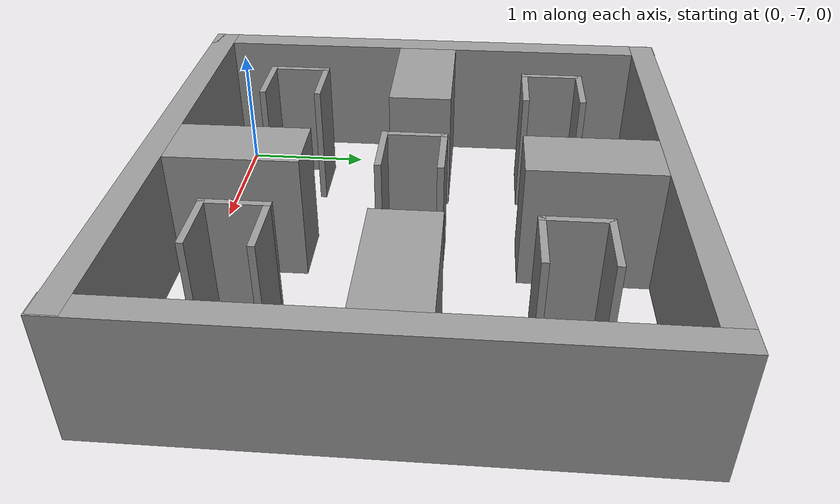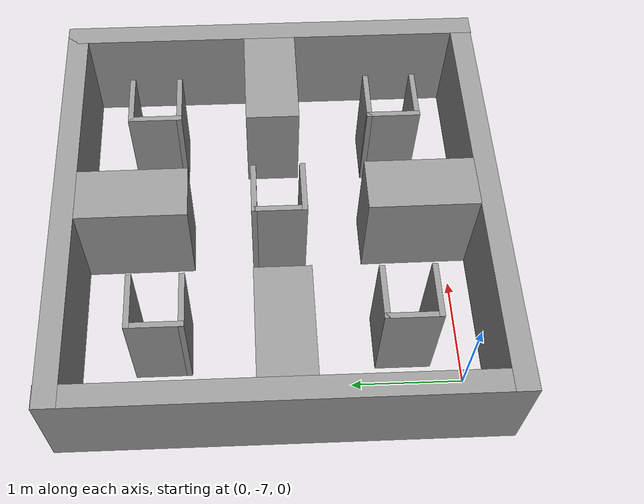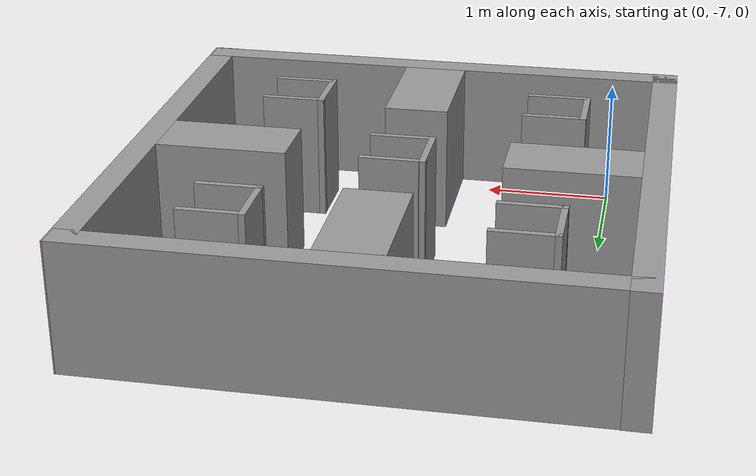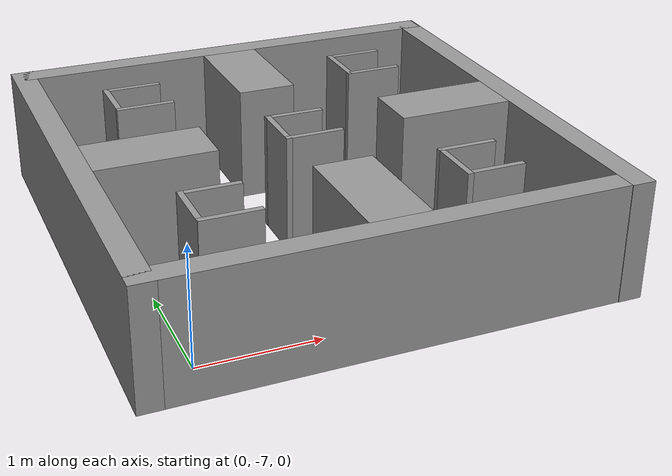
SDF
<sdf version="1.7">
 <model name="final_model">
  <link name="link_0">
   <inertial>
    <mass>1</mass>
    <inertia>
     <ixx>0.166667</ixx>
     <ixy>0</ixy>
     <ixz>0</ixz>
     <iyy>0.166667</iyy>
     <iyz>0</iyz>
     <izz>0.166667</izz>
    </inertia>
   </inertial>
   <pose>1.48205 -3.49214 0.5 0 -0 0</pose>
   <visual name="visual">
    <geometry><box><size>4 0.2 1</size></box></geometry>
    <material>
     <lighting>1</lighting>
     <script><uri>file://media/materials/scripts/gazebo.material</uri><name>Gazebo/Grey</name></script>
     <shader type="pixel"><normal_map>__default__</normal_map></shader>
     <ambient>0.1 0.1 0.1 1</ambient>
     <diffuse>0.1 0.1 0.1 1</diffuse>
     <specular>0.01 0.01 0.01 1</specular>
     <emissive>0 0 0 1</emissive>
    </material>
   </visual>
   <collision name="collision">
    <geometry><box><size>1 1 1</size></box></geometry>
    <surface>
     <friction>
      <ode><mu>1</mu><mu2>1</mu2><fdir1>0 0 0</fdir1><slip1>0</slip1><slip2>0</slip2></ode>
      <torsional>
       <coefficient>1</coefficient>
       <patch_radius>0</patch_radius>
       <surface_radius>0</surface_radius>
       <use_patch_radius>1</use_patch_radius>
       <ode><slip>0</slip></ode>
      </torsional>
     </friction>
     <bounce><restitution_coefficient>0</restitution_coefficient><threshold>1e+06</threshold></bounce>
     <contact>
      <collide_without_contact>0</collide_without_contact>
      <collide_without_contact_bitmask>1</collide_without_contact_bitmask>
      <collide_bitmask>1</collide_bitmask>
      <ode>
       <soft_cfm>0</soft_cfm>
       <soft_erp>0.2</soft_erp>
       <kp>1e+13</kp>
       <kd>1</kd>
       <max_vel>0.01</max_vel>
       <min_depth>0</min_depth>
      </ode>
      <bullet>
       <split_impulse>1</split_impulse>
       <split_impulse_penetration_threshold>-0.01</split_impulse_penetration_threshold>
       <soft_cfm>0</soft_cfm>
       <soft_erp>0.2</soft_erp>
       <kp>1e+13</kp>
       <kd>1</kd>
      </bullet>
     </contact>
    </surface>
   </collision>
  </link>
  <link name="link_0_clone">
   <inertial>
    <mass>1</mass>
    <inertia>
     <ixx>0.166667</ixx>
     <ixy>0</ixy>
     <ixz>0</ixz>
     <iyy>0.166667</iyy>
     <iyz>0</iyz>
     <izz>0.166667</izz>
    </inertia>
   </inertial>
   <pose>1.48176 -7.28709 0.5 0 -0 0</pose>
   <visual name="visual">
    <geometry><box><size>4 0.2 1</size></box></geometry>
    <material>
     <lighting>1</lighting>
     <script><uri>file://media/materials/scripts/gazebo.material</uri><name>Gazebo/Grey</name></script>
     <shader type="pixel"><normal_map>__default__</normal_map></shader>
     <ambient>0.1 0.1 0.1 1</ambient>
     <diffuse>0.1 0.1 0.1 1</diffuse>
     <specular>0.01 0.01 0.01 1</specular>
     <emissive>0 0 0 1</emissive>
    </material>
   </visual>
   <collision name="collision">
    <geometry><box><size>1 1 1</size></box></geometry>
    <surface>
     <friction>
      <ode><mu>1</mu><mu2>1</mu2><fdir1>0 0 0</fdir1><slip1>0</slip1><slip2>0</slip2></ode>
      <torsional>
       <coefficient>1</coefficient>
       <patch_radius>0</patch_radius>
       <surface_radius>0</surface_radius>
       <use_patch_radius>1</use_patch_radius>
       <ode><slip>0</slip></ode>
      </torsional>
     </friction>
     <bounce><restitution_coefficient>0</restitution_coefficient><threshold>1e+06</threshold></bounce>
     <contact>
      <collide_without_contact>0</collide_without_contact>
      <collide_without_contact_bitmask>1</collide_without_contact_bitmask>
      <collide_bitmask>1</collide_bitmask>
      <ode>
       <soft_cfm>0</soft_cfm>
       <soft_erp>0.2</soft_erp>
       <kp>1e+13</kp>
       <kd>1</kd>
       <max_vel>0.01</max_vel>
       <min_depth>0</min_depth>
      </ode>
      <bullet>
       <split_impulse>1</split_impulse>
       <split_impulse_penetration_threshold>-0.01</split_impulse_penetration_threshold>
       <soft_cfm>0</soft_cfm>
       <soft_erp>0.2</soft_erp>
       <kp>1e+13</kp>
       <kd>1</kd>
      </bullet>
     </contact>
    </surface>
   </collision>
  </link>
  <link name="link_0_clone_0">
   <inertial>
    <mass>1</mass>
    <inertia>
     <ixx>0.166667</ixx>
     <ixy>0</ixy>
     <ixz>0</ixz>
     <iyy>0.166667</iyy>
     <iyz>0</iyz>
     <izz>0.166667</izz>
    </inertia>
   </inertial>
   <pose>3.39281 -5.39262 0.5 0 0 -1.57086</pose>
   <visual name="visual">
    <geometry><box><size>4 0.2 1</size></box></geometry>
    <material>
     <lighting>1</lighting>
     <script><uri>file://media/materials/scripts/gazebo.material</uri><name>Gazebo/Grey</name></script>
     <shader type="pixel"><normal_map>__default__</normal_map></shader>
     <ambient>0.1 0.1 0.1 1</ambient>
     <diffuse>0.1 0.1 0.1 1</diffuse>
     <specular>0.01 0.01 0.01 1</specular>
     <emissive>0 0 0 1</emissive>
    </material>
   </visual>
   <collision name="collision">
    <geometry><box><size>1 1 1</size></box></geometry>
    <surface>
     <friction>
      <ode><mu>1</mu><mu2>1</mu2><fdir1>0 0 0</fdir1><slip1>0</slip1><slip2>0</slip2></ode>
      <torsional>
       <coefficient>1</coefficient>
       <patch_radius>0</patch_radius>
       <surface_radius>0</surface_radius>
       <use_patch_radius>1</use_patch_radius>
       <ode><slip>0</slip></ode>
      </torsional>
     </friction>
     <bounce><restitution_coefficient>0</restitution_coefficient><threshold>1e+06</threshold></bounce>
     <contact>
      <collide_without_contact>0</collide_without_contact>
      <collide_without_contact_bitmask>1</collide_without_contact_bitmask>
      <collide_bitmask>1</collide_bitmask>
      <ode>
       <soft_cfm>0</soft_cfm>
       <soft_erp>0.2</soft_erp>
       <kp>1e+13</kp>
       <kd>1</kd>
       <max_vel>0.01</max_vel>
       <min_depth>0</min_depth>
      </ode>
      <bullet>
       <split_impulse>1</split_impulse>
       <split_impulse_penetration_threshold>-0.01</split_impulse_penetration_threshold>
       <soft_cfm>0</soft_cfm>
       <soft_erp>0.2</soft_erp>
       <kp>1e+13</kp>
       <kd>1</kd>
      </bullet>
     </contact>
    </surface>
   </collision>
  </link>
  <link name="link_0_clone_0_clone">
   <inertial>
    <mass>1</mass>
    <inertia>
     <ixx>0.166667</ixx>
     <ixy>0</ixy>
     <ixz>0</ixz>
     <iyy>0.166667</iyy>
     <iyz>0</iyz>
     <izz>0.166667</izz>
    </inertia>
   </inertial>
   <pose>-0.418322 -5.38811 0.5 0 0 -1.57086</pose>
   <visual name="visual">
    <geometry><box><size>4 0.2 1</size></box></geometry>
    <material>
     <lighting>1</lighting>
     <script><uri>file://media/materials/scripts/gazebo.material</uri><name>Gazebo/Grey</name></script>
     <shader type="pixel"><normal_map>__default__</normal_map></shader>
     <ambient>0.1 0.1 0.1 1</ambient>
     <diffuse>0.1 0.1 0.1 1</diffuse>
     <specular>0.01 0.01 0.01 1</specular>
     <emissive>0 0 0 1</emissive>
    </material>
   </visual>
   <collision name="collision">
    <geometry><box><size>1 1 1</size></box></geometry>
    <surface>
     <friction>
      <ode><mu>1</mu><mu2>1</mu2><fdir1>0 0 0</fdir1><slip1>0</slip1><slip2>0</slip2></ode>
      <torsional>
       <coefficient>1</coefficient>
       <patch_radius>0</patch_radius>
       <surface_radius>0</surface_radius>
       <use_patch_radius>1</use_patch_radius>
       <ode><slip>0</slip></ode>
      </torsional>
     </friction>
     <bounce><restitution_coefficient>0</restitution_coefficient><threshold>1e+06</threshold></bounce>
     <contact>
      <collide_without_contact>0</collide_without_contact>
      <collide_without_contact_bitmask>1</collide_without_contact_bitmask>
      <collide_bitmask>1</collide_bitmask>
      <ode>
       <soft_cfm>0</soft_cfm>
       <soft_erp>0.2</soft_erp>
       <kp>1e+13</kp>
       <kd>1</kd>
       <max_vel>0.01</max_vel>
       <min_depth>0</min_depth>
      </ode>
      <bullet>
       <split_impulse>1</split_impulse>
       <split_impulse_penetration_threshold>-0.01</split_impulse_penetration_threshold>
       <soft_cfm>0</soft_cfm>
       <soft_erp>0.2</soft_erp>
       <kp>1e+13</kp>
       <kd>1</kd>
      </bullet>
     </contact>
    </surface>
   </collision>
  </link>
  <link name="link_1">
   <inertial>
    <mass>1</mass>
    <inertia>
     <ixx>0.166667</ixx>
     <ixy>0</ixy>
     <ixz>0</ixz>
     <iyy>0.166667</iyy>
     <iyz>0</iyz>
     <izz>0.166667</izz>
    </inertia>
   </inertial>
   <pose>1.72285 -5.20542 0.5 0 -0 0</pose>
   <visual name="visual">
    <geometry><box><size>0 0 0</size></box></geometry>
    <material>
     <lighting>1</lighting>
     <script><uri>file://media/materials/scripts/gazebo.material</uri><name>Gazebo/Grey</name></script>
     <shader type="pixel"><normal_map>__default__</normal_map></shader>
     <ambient>0.1 0.1 0.1 1</ambient>
     <diffuse>0.1 0.1 0.1 1</diffuse>
     <specular>0.01 0.01 0.01 1</specular>
     <emissive>0 0 0 1</emissive>
    </material>
   </visual>
   <collision name="collision">
    <geometry><box><size>1 1 1</size></box></geometry>
    <surface>
     <friction>
      <ode><mu>1</mu><mu2>1</mu2><fdir1>0 0 0</fdir1><slip1>0</slip1><slip2>0</slip2></ode>
      <torsional>
       <coefficient>1</coefficient>
       <patch_radius>0</patch_radius>
       <surface_radius>0</surface_radius>
       <use_patch_radius>1</use_patch_radius>
       <ode><slip>0</slip></ode>
      </torsional>
     </friction>
     <bounce><restitution_coefficient>0</restitution_coefficient><threshold>1e+06</threshold></bounce>
     <contact>
      <collide_without_contact>0</collide_without_contact>
      <collide_without_contact_bitmask>1</collide_without_contact_bitmask>
      <collide_bitmask>1</collide_bitmask>
      <ode>
       <soft_cfm>0</soft_cfm>
       <soft_erp>0.2</soft_erp>
       <kp>1e+13</kp>
       <kd>1</kd>
       <max_vel>0.01</max_vel>
       <min_depth>0</min_depth>
      </ode>
      <bullet>
       <split_impulse>1</split_impulse>
       <split_impulse_penetration_threshold>-0.01</split_impulse_penetration_threshold>
       <soft_cfm>0</soft_cfm>
       <soft_erp>0.2</soft_erp>
       <kp>1e+13</kp>
       <kd>1</kd>
      </bullet>
     </contact>
    </surface>
   </collision>
  </link>
  <link name="link_1_clone">
   <inertial>
    <mass>1</mass>
    <inertia>
     <ixx>0.166667</ixx>
     <ixy>0</ixy>
     <ixz>0</ixz>
     <iyy>0.166667</iyy>
     <iyz>0</iyz>
     <izz>0.166667</izz>
    </inertia>
   </inertial>
   <pose>2.79473 -5.37966 0.5 0 -0 0</pose>
   <visual name="visual">
    <geometry><box><size>1 0.5 1</size></box></geometry>
    <material>
     <lighting>1</lighting>
     <script><uri>file://media/materials/scripts/gazebo.material</uri><name>Gazebo/Grey</name></script>
     <shader type="pixel"><normal_map>__default__</normal_map></shader>
     <ambient>0.1 0.1 0.1 1</ambient>
     <diffuse>0.1 0.1 0.1 1</diffuse>
     <specular>0.01 0.01 0.01 1</specular>
     <emissive>0 0 0 1</emissive>
    </material>
   </visual>
   <collision name="collision">
    <geometry><box><size>1 1 1</size></box></geometry>
    <surface>
     <friction>
      <ode><mu>1</mu><mu2>1</mu2><fdir1>0 0 0</fdir1><slip1>0</slip1><slip2>0</slip2></ode>
      <torsional>
       <coefficient>1</coefficient>
       <patch_radius>0</patch_radius>
       <surface_radius>0</surface_radius>
       <use_patch_radius>1</use_patch_radius>
       <ode><slip>0</slip></ode>
      </torsional>
     </friction>
     <bounce><restitution_coefficient>0</restitution_coefficient><threshold>1e+06</threshold></bounce>
     <contact>
      <collide_without_contact>0</collide_without_contact>
      <collide_without_contact_bitmask>1</collide_without_contact_bitmask>
      <collide_bitmask>1</collide_bitmask>
      <ode>
       <soft_cfm>0</soft_cfm>
       <soft_erp>0.2</soft_erp>
       <kp>1e+13</kp>
       <kd>1</kd>
       <max_vel>0.01</max_vel>
       <min_depth>0</min_depth>
      </ode>
      <bullet>
       <split_impulse>1</split_impulse>
       <split_impulse_penetration_threshold>-0.01</split_impulse_penetration_threshold>
       <soft_cfm>0</soft_cfm>
       <soft_erp>0.2</soft_erp>
       <kp>1e+13</kp>
       <kd>1</kd>
      </bullet>
     </contact>
    </surface>
   </collision>
  </link>
  <link name="link_1_clone_0">
   <inertial>
    <mass>1</mass>
    <inertia>
     <ixx>0.166667</ixx>
     <ixy>0</ixy>
     <ixz>0</ixz>
     <iyy>0.166667</iyy>
     <iyz>0</iyz>
     <izz>0.166667</izz>
    </inertia>
   </inertial>
   <pose>1.27253 -5.40395 0.5 0 -0 0</pose>
   <visual name="visual">
    <geometry><box><size>0.05 0.5 1</size></box></geometry>
    <material>
     <lighting>1</lighting>
     <script><uri>file://media/materials/scripts/gazebo.material</uri><name>Gazebo/Grey</name></script>
     <shader type="pixel"><normal_map>__default__</normal_map></shader>
     <ambient>0.1 0.1 0.1 1</ambient>
     <diffuse>0.1 0.1 0.1 1</diffuse>
     <specular>0.01 0.01 0.01 1</specular>
     <emissive>0 0 0 1</emissive>
    </material>
   </visual>
   <collision name="collision">
    <geometry><box><size>1 1 1</size></box></geometry>
    <surface>
     <friction>
      <ode><mu>1</mu><mu2>1</mu2><fdir1>0 0 0</fdir1><slip1>0</slip1><slip2>0</slip2></ode>
      <torsional>
       <coefficient>1</coefficient>
       <patch_radius>0</patch_radius>
       <surface_radius>0</surface_radius>
       <use_patch_radius>1</use_patch_radius>
       <ode><slip>0</slip></ode>
      </torsional>
     </friction>
     <bounce><restitution_coefficient>0</restitution_coefficient><threshold>1e+06</threshold></bounce>
     <contact>
      <collide_without_contact>0</collide_without_contact>
      <collide_without_contact_bitmask>1</collide_without_contact_bitmask>
      <collide_bitmask>1</collide_bitmask>
      <ode>
       <soft_cfm>0</soft_cfm>
       <soft_erp>0.2</soft_erp>
       <kp>1e+13</kp>
       <kd>1</kd>
       <max_vel>0.01</max_vel>
       <min_depth>0</min_depth>
      </ode>
      <bullet>
       <split_impulse>1</split_impulse>
       <split_impulse_penetration_threshold>-0.01</split_impulse_penetration_threshold>
       <soft_cfm>0</soft_cfm>
       <soft_erp>0.2</soft_erp>
       <kp>1e+13</kp>
       <kd>1</kd>
      </bullet>
     </contact>
    </surface>
   </collision>
  </link>
  <link name="link_1_clone_0_clone">
   <inertial>
    <mass>1</mass>
    <inertia>
     <ixx>0.166667</ixx>
     <ixy>0</ixy>
     <ixz>0</ixz>
     <iyy>0.166667</iyy>
     <iyz>0</iyz>
     <izz>0.166667</izz>
    </inertia>
   </inertial>
   <pose>2.31781 -4.27736 0.5 0 -0 0</pose>
   <visual name="visual">
    <geometry><box><size>0.05 0.5 1</size></box></geometry>
    <material>
     <lighting>1</lighting>
     <script><uri>file://media/materials/scripts/gazebo.material</uri><name>Gazebo/Grey</name></script>
     <shader type="pixel"><normal_map>__default__</normal_map></shader>
     <ambient>0.1 0.1 0.1 1</ambient>
     <diffuse>0.1 0.1 0.1 1</diffuse>
     <specular>0.01 0.01 0.01 1</specular>
     <emissive>0 0 0 1</emissive>
    </material>
   </visual>
   <collision name="collision">
    <geometry><box><size>1 1 1</size></box></geometry>
    <surface>
     <friction>
      <ode><mu>1</mu><mu2>1</mu2><fdir1>0 0 0</fdir1><slip1>0</slip1><slip2>0</slip2></ode>
      <torsional>
       <coefficient>1</coefficient>
       <patch_radius>0</patch_radius>
       <surface_radius>0</surface_radius>
       <use_patch_radius>1</use_patch_radius>
       <ode><slip>0</slip></ode>
      </torsional>
     </friction>
     <bounce><restitution_coefficient>0</restitution_coefficient><threshold>1e+06</threshold></bounce>
     <contact>
      <collide_without_contact>0</collide_without_contact>
      <collide_without_contact_bitmask>1</collide_without_contact_bitmask>
      <collide_bitmask>1</collide_bitmask>
      <ode>
       <soft_cfm>0</soft_cfm>
       <soft_erp>0.2</soft_erp>
       <kp>1e+13</kp>
       <kd>1</kd>
       <max_vel>0.01</max_vel>
       <min_depth>0</min_depth>
      </ode>
      <bullet>
       <split_impulse>1</split_impulse>
       <split_impulse_penetration_threshold>-0.01</split_impulse_penetration_threshold>
       <soft_cfm>0</soft_cfm>
       <soft_erp>0.2</soft_erp>
       <kp>1e+13</kp>
       <kd>1</kd>
      </bullet>
     </contact>
    </surface>
   </collision>
  </link>
  <link name="link_1_clone_0_clone_clone">
   <inertial>
    <mass>1</mass>
    <inertia>
     <ixx>0.166667</ixx>
     <ixy>0</ixy>
     <ixz>0</ixz>
     <iyy>0.166667</iyy>
     <iyz>0</iyz>
     <izz>0.166667</izz>
    </inertia>
   </inertial>
   <pose>2.29216 -6.51452 0.5 0 -0 0</pose>
   <visual name="visual">
    <geometry><box><size>0.05 0.5 1</size></box></geometry>
    <material>
     <lighting>1</lighting>
     <script><uri>file://media/materials/scripts/gazebo.material</uri><name>Gazebo/Grey</name></script>
     <shader type="pixel"><normal_map>__default__</normal_map></shader>
     <ambient>0.1 0.1 0.1 1</ambient>
     <diffuse>0.1 0.1 0.1 1</diffuse>
     <specular>0.01 0.01 0.01 1</specular>
     <emissive>0 0 0 1</emissive>
    </material>
   </visual>
   <collision name="collision">
    <geometry><box><size>1 1 1</size></box></geometry>
    <surface>
     <friction>
      <ode><mu>1</mu><mu2>1</mu2><fdir1>0 0 0</fdir1><slip1>0</slip1><slip2>0</slip2></ode>
      <torsional>
       <coefficient>1</coefficient>
       <patch_radius>0</patch_radius>
       <surface_radius>0</surface_radius>
       <use_patch_radius>1</use_patch_radius>
       <ode><slip>0</slip></ode>
      </torsional>
     </friction>
     <bounce><restitution_coefficient>0</restitution_coefficient><threshold>1e+06</threshold></bounce>
     <contact>
      <collide_without_contact>0</collide_without_contact>
      <collide_without_contact_bitmask>1</collide_without_contact_bitmask>
      <collide_bitmask>1</collide_bitmask>
      <ode>
       <soft_cfm>0</soft_cfm>
       <soft_erp>0.2</soft_erp>
       <kp>1e+13</kp>
       <kd>1</kd>
       <max_vel>0.01</max_vel>
       <min_depth>0</min_depth>
      </ode>
      <bullet>
       <split_impulse>1</split_impulse>
       <split_impulse_penetration_threshold>-0.01</split_impulse_penetration_threshold>
       <soft_cfm>0</soft_cfm>
       <soft_erp>0.2</soft_erp>
       <kp>1e+13</kp>
       <kd>1</kd>
      </bullet>
     </contact>
    </surface>
   </collision>
  </link>
  <link name="link_1_clone_0_clone_clone_0">
   <inertial>
    <mass>1</mass>
    <inertia>
     <ixx>0.166667</ixx>
     <ixy>0</ixy>
     <ixz>0</ixz>
     <iyy>0.166667</iyy>
     <iyz>0</iyz>
     <izz>0.166667</izz>
    </inertia>
   </inertial>
   <pose>0.176139 -4.32563 0.5 0 -0 0</pose>
   <visual name="visual">
    <geometry><box><size>0.05 0.5 1</size></box></geometry>
    <material>
     <lighting>1</lighting>
     <script><uri>file://media/materials/scripts/gazebo.material</uri><name>Gazebo/Grey</name></script>
     <shader type="pixel"><normal_map>__default__</normal_map></shader>
     <ambient>0.1 0.1 0.1 1</ambient>
     <diffuse>0.1 0.1 0.1 1</diffuse>
     <specular>0.01 0.01 0.01 1</specular>
     <emissive>0 0 0 1</emissive>
    </material>
   </visual>
   <collision name="collision">
    <geometry><box><size>1 1 1</size></box></geometry>
    <surface>
     <friction>
      <ode><mu>1</mu><mu2>1</mu2><fdir1>0 0 0</fdir1><slip1>0</slip1><slip2>0</slip2></ode>
      <torsional>
       <coefficient>1</coefficient>
       <patch_radius>0</patch_radius>
       <surface_radius>0</surface_radius>
       <use_patch_radius>1</use_patch_radius>
       <ode><slip>0</slip></ode>
      </torsional>
     </friction>
     <bounce><restitution_coefficient>0</restitution_coefficient><threshold>1e+06</threshold></bounce>
     <contact>
      <collide_without_contact>0</collide_without_contact>
      <collide_without_contact_bitmask>1</collide_without_contact_bitmask>
      <collide_bitmask>1</collide_bitmask>
      <ode>
       <soft_cfm>0</soft_cfm>
       <soft_erp>0.2</soft_erp>
       <kp>1e+13</kp>
       <kd>1</kd>
       <max_vel>0.01</max_vel>
       <min_depth>0</min_depth>
      </ode>
      <bullet>
       <split_impulse>1</split_impulse>
       <split_impulse_penetration_threshold>-0.01</split_impulse_penetration_threshold>
       <soft_cfm>0</soft_cfm>
       <soft_erp>0.2</soft_erp>
       <kp>1e+13</kp>
       <kd>1</kd>
      </bullet>
     </contact>
    </surface>
   </collision>
  </link>
  <link name="link_1_clone_0_clone_clone_1">
   <inertial>
    <mass>1</mass>
    <inertia>
     <ixx>0.166667</ixx>
     <ixy>0</ixy>
     <ixz>0</ixz>
     <iyy>0.166667</iyy>
     <iyz>0</iyz>
     <izz>0.166667</izz>
    </inertia>
   </inertial>
   <pose>0.182858 -6.47327 0.5 0 -0 0</pose>
   <visual name="visual">
    <geometry><box><size>0.05 0.5 1</size></box></geometry>
    <material>
     <lighting>1</lighting>
     <script><uri>file://media/materials/scripts/gazebo.material</uri><name>Gazebo/Grey</name></script>
     <shader type="pixel"><normal_map>__default__</normal_map></shader>
     <ambient>0.1 0.1 0.1 1</ambient>
     <diffuse>0.1 0.1 0.1 1</diffuse>
     <specular>0.01 0.01 0.01 1</specular>
     <emissive>0 0 0 1</emissive>
    </material>
   </visual>
   <collision name="collision">
    <geometry><box><size>1 1 1</size></box></geometry>
    <surface>
     <friction>
      <ode><mu>1</mu><mu2>1</mu2><fdir1>0 0 0</fdir1><slip1>0</slip1><slip2>0</slip2></ode>
      <torsional>
       <coefficient>1</coefficient>
       <patch_radius>0</patch_radius>
       <surface_radius>0</surface_radius>
       <use_patch_radius>1</use_patch_radius>
       <ode><slip>0</slip></ode>
      </torsional>
     </friction>
     <bounce><restitution_coefficient>0</restitution_coefficient><threshold>1e+06</threshold></bounce>
     <contact>
      <collide_without_contact>0</collide_without_contact>
      <collide_without_contact_bitmask>1</collide_without_contact_bitmask>
      <collide_bitmask>1</collide_bitmask>
      <ode>
       <soft_cfm>0</soft_cfm>
       <soft_erp>0.2</soft_erp>
       <kp>1e+13</kp>
       <kd>1</kd>
       <max_vel>0.01</max_vel>
       <min_depth>0</min_depth>
      </ode>
      <bullet>
       <split_impulse>1</split_impulse>
       <split_impulse_penetration_threshold>-0.01</split_impulse_penetration_threshold>
       <soft_cfm>0</soft_cfm>
       <soft_erp>0.2</soft_erp>
       <kp>1e+13</kp>
       <kd>1</kd>
      </bullet>
     </contact>
    </surface>
   </collision>
  </link>
  <link name="link_1_clone_1">
   <inertial>
    <mass>1</mass>
    <inertia>
     <ixx>0.166667</ixx>
     <ixy>0</ixy>
     <ixz>0</ixz>
     <iyy>0.166667</iyy>
     <iyz>0</iyz>
     <izz>0.166667</izz>
    </inertia>
   </inertial>
   <pose>1.49703 -5.18002 0.5 0 0 -1.57605</pose>
   <visual name="visual">
    <geometry><box><size>0.05 0.5 1</size></box></geometry>
    <material>
     <lighting>1</lighting>
     <script><uri>file://media/materials/scripts/gazebo.material</uri><name>Gazebo/Grey</name></script>
     <shader type="pixel"><normal_map>__default__</normal_map></shader>
     <ambient>0.1 0.1 0.1 1</ambient>
     <diffuse>0.1 0.1 0.1 1</diffuse>
     <specular>0.01 0.01 0.01 1</specular>
     <emissive>0 0 0 1</emissive>
    </material>
   </visual>
   <collision name="collision">
    <geometry><box><size>1 1 1</size></box></geometry>
    <surface>
     <friction>
      <ode><mu>1</mu><mu2>1</mu2><fdir1>0 0 0</fdir1><slip1>0</slip1><slip2>0</slip2></ode>
      <torsional>
       <coefficient>1</coefficient>
       <patch_radius>0</patch_radius>
       <surface_radius>0</surface_radius>
       <use_patch_radius>1</use_patch_radius>
       <ode><slip>0</slip></ode>
      </torsional>
     </friction>
     <bounce><restitution_coefficient>0</restitution_coefficient><threshold>1e+06</threshold></bounce>
     <contact>
      <collide_without_contact>0</collide_without_contact>
      <collide_without_contact_bitmask>1</collide_without_contact_bitmask>
      <collide_bitmask>1</collide_bitmask>
      <ode>
       <soft_cfm>0</soft_cfm>
       <soft_erp>0.2</soft_erp>
       <kp>1e+13</kp>
       <kd>1</kd>
       <max_vel>0.01</max_vel>
       <min_depth>0</min_depth>
      </ode>
      <bullet>
       <split_impulse>1</split_impulse>
       <split_impulse_penetration_threshold>-0.01</split_impulse_penetration_threshold>
       <soft_cfm>0</soft_cfm>
       <soft_erp>0.2</soft_erp>
       <kp>1e+13</kp>
       <kd>1</kd>
      </bullet>
     </contact>
    </surface>
   </collision>
  </link>
  <link name="link_1_clone_1_clone">
   <inertial>
    <mass>1</mass>
    <inertia>
     <ixx>0.166667</ixx>
     <ixy>0</ixy>
     <ixz>0</ixz>
     <iyy>0.166667</iyy>
     <iyz>0</iyz>
     <izz>0.166667</izz>
    </inertia>
   </inertial>
   <pose>1.49762 -5.62806 0.5 0 0 -1.57061</pose>
   <visual name="visual">
    <geometry><box><size>0.05 0.5 1</size></box></geometry>
    <material>
     <lighting>1</lighting>
     <script><uri>file://media/materials/scripts/gazebo.material</uri><name>Gazebo/Grey</name></script>
     <shader type="pixel"><normal_map>__default__</normal_map></shader>
     <ambient>0.1 0.1 0.1 1</ambient>
     <diffuse>0.1 0.1 0.1 1</diffuse>
     <specular>0.01 0.01 0.01 1</specular>
     <emissive>0 0 0 1</emissive>
    </material>
   </visual>
   <collision name="collision">
    <geometry><box><size>1 1 1</size></box></geometry>
    <surface>
     <friction>
      <ode><mu>1</mu><mu2>1</mu2><fdir1>0 0 0</fdir1><slip1>0</slip1><slip2>0</slip2></ode>
      <torsional>
       <coefficient>1</coefficient>
       <patch_radius>0</patch_radius>
       <surface_radius>0</surface_radius>
       <use_patch_radius>1</use_patch_radius>
       <ode><slip>0</slip></ode>
      </torsional>
     </friction>
     <bounce><restitution_coefficient>0</restitution_coefficient><threshold>1e+06</threshold></bounce>
     <contact>
      <collide_without_contact>0</collide_without_contact>
      <collide_without_contact_bitmask>1</collide_without_contact_bitmask>
      <collide_bitmask>1</collide_bitmask>
      <ode>
       <soft_cfm>0</soft_cfm>
       <soft_erp>0.2</soft_erp>
       <kp>1e+13</kp>
       <kd>1</kd>
       <max_vel>0.01</max_vel>
       <min_depth>0</min_depth>
      </ode>
      <bullet>
       <split_impulse>1</split_impulse>
       <split_impulse_penetration_threshold>-0.01</split_impulse_penetration_threshold>
       <soft_cfm>0</soft_cfm>
       <soft_erp>0.2</soft_erp>
       <kp>1e+13</kp>
       <kd>1</kd>
      </bullet>
     </contact>
    </surface>
   </collision>
  </link>
  <link name="link_1_clone_1_clone_0">
   <inertial>
    <mass>1</mass>
    <inertia>
     <ixx>0.166667</ixx>
     <ixy>0</ixy>
     <ixz>0</ixz>
     <iyy>0.166667</iyy>
     <iyz>0</iyz>
     <izz>0.166667</izz>
    </inertia>
   </inertial>
   <pose>2.54527 -4.05386 0.5 0 0 -1.57605</pose>
   <visual name="visual">
    <geometry><box><size>0.05 0.5 1</size></box></geometry>
    <material>
     <lighting>1</lighting>
     <script><uri>file://media/materials/scripts/gazebo.material</uri><name>Gazebo/Grey</name></script>
     <shader type="pixel"><normal_map>__default__</normal_map></shader>
     <ambient>0.1 0.1 0.1 1</ambient>
     <diffuse>0.1 0.1 0.1 1</diffuse>
     <specular>0.01 0.01 0.01 1</specular>
     <emissive>0 0 0 1</emissive>
    </material>
   </visual>
   <collision name="collision">
    <geometry><box><size>1 1 1</size></box></geometry>
    <surface>
     <friction>
      <ode><mu>1</mu><mu2>1</mu2><fdir1>0 0 0</fdir1><slip1>0</slip1><slip2>0</slip2></ode>
      <torsional>
       <coefficient>1</coefficient>
       <patch_radius>0</patch_radius>
       <surface_radius>0</surface_radius>
       <use_patch_radius>1</use_patch_radius>
       <ode><slip>0</slip></ode>
      </torsional>
     </friction>
     <bounce><restitution_coefficient>0</restitution_coefficient><threshold>1e+06</threshold></bounce>
     <contact>
      <collide_without_contact>0</collide_without_contact>
      <collide_without_contact_bitmask>1</collide_without_contact_bitmask>
      <collide_bitmask>1</collide_bitmask>
      <ode>
       <soft_cfm>0</soft_cfm>
       <soft_erp>0.2</soft_erp>
       <kp>1e+13</kp>
       <kd>1</kd>
       <max_vel>0.01</max_vel>
       <min_depth>0</min_depth>
      </ode>
      <bullet>
       <split_impulse>1</split_impulse>
       <split_impulse_penetration_threshold>-0.01</split_impulse_penetration_threshold>
       <soft_cfm>0</soft_cfm>
       <soft_erp>0.2</soft_erp>
       <kp>1e+13</kp>
       <kd>1</kd>
      </bullet>
     </contact>
    </surface>
   </collision>
  </link>
  <link name="link_1_clone_1_clone_clone">
   <inertial>
    <mass>1</mass>
    <inertia>
     <ixx>0.166667</ixx>
     <ixy>0</ixy>
     <ixz>0</ixz>
     <iyy>0.166667</iyy>
     <iyz>0</iyz>
     <izz>0.166667</izz>
    </inertia>
   </inertial>
   <pose>2.54274 -4.50255 0.5 0 0 -1.57061</pose>
   <visual name="visual">
    <geometry><box><size>0.05 0.5 1</size></box></geometry>
    <material>
     <lighting>1</lighting>
     <script><uri>file://media/materials/scripts/gazebo.material</uri><name>Gazebo/Grey</name></script>
     <shader type="pixel"><normal_map>__default__</normal_map></shader>
     <ambient>0.1 0.1 0.1 1</ambient>
     <diffuse>0.1 0.1 0.1 1</diffuse>
     <specular>0.01 0.01 0.01 1</specular>
     <emissive>0 0 0 1</emissive>
    </material>
   </visual>
   <collision name="collision">
    <geometry><box><size>1 1 1</size></box></geometry>
    <surface>
     <friction>
      <ode><mu>1</mu><mu2>1</mu2><fdir1>0 0 0</fdir1><slip1>0</slip1><slip2>0</slip2></ode>
      <torsional>
       <coefficient>1</coefficient>
       <patch_radius>0</patch_radius>
       <surface_radius>0</surface_radius>
       <use_patch_radius>1</use_patch_radius>
       <ode><slip>0</slip></ode>
      </torsional>
     </friction>
     <bounce><restitution_coefficient>0</restitution_coefficient><threshold>1e+06</threshold></bounce>
     <contact>
      <collide_without_contact>0</collide_without_contact>
      <collide_without_contact_bitmask>1</collide_without_contact_bitmask>
      <collide_bitmask>1</collide_bitmask>
      <ode>
       <soft_cfm>0</soft_cfm>
       <soft_erp>0.2</soft_erp>
       <kp>1e+13</kp>
       <kd>1</kd>
       <max_vel>0.01</max_vel>
       <min_depth>0</min_depth>
      </ode>
      <bullet>
       <split_impulse>1</split_impulse>
       <split_impulse_penetration_threshold>-0.01</split_impulse_penetration_threshold>
       <soft_cfm>0</soft_cfm>
       <soft_erp>0.2</soft_erp>
       <kp>1e+13</kp>
       <kd>1</kd>
      </bullet>
     </contact>
    </surface>
   </collision>
  </link>
  <link name="link_1_clone_1_clone_clone_clone">
   <inertial>
    <mass>1</mass>
    <inertia>
     <ixx>0.166667</ixx>
     <ixy>0</ixy>
     <ixz>0</ixz>
     <iyy>0.166667</iyy>
     <iyz>0</iyz>
     <izz>0.166667</izz>
    </inertia>
   </inertial>
   <pose>2.51701 -6.2895 0.5 0 0 -1.57061</pose>
   <visual name="visual">
    <geometry><box><size>0.05 0.5 1</size></box></geometry>
    <material>
     <lighting>1</lighting>
     <script><uri>file://media/materials/scripts/gazebo.material</uri><name>Gazebo/Grey</name></script>
     <shader type="pixel"><normal_map>__default__</normal_map></shader>
     <ambient>0.1 0.1 0.1 1</ambient>
     <diffuse>0.1 0.1 0.1 1</diffuse>
     <specular>0.01 0.01 0.01 1</specular>
     <emissive>0 0 0 1</emissive>
    </material>
   </visual>
   <collision name="collision">
    <geometry><box><size>1 1 1</size></box></geometry>
    <surface>
     <friction>
      <ode><mu>1</mu><mu2>1</mu2><fdir1>0 0 0</fdir1><slip1>0</slip1><slip2>0</slip2></ode>
      <torsional>
       <coefficient>1</coefficient>
       <patch_radius>0</patch_radius>
       <surface_radius>0</surface_radius>
       <use_patch_radius>1</use_patch_radius>
       <ode><slip>0</slip></ode>
      </torsional>
     </friction>
     <bounce><restitution_coefficient>0</restitution_coefficient><threshold>1e+06</threshold></bounce>
     <contact>
      <collide_without_contact>0</collide_without_contact>
      <collide_without_contact_bitmask>1</collide_without_contact_bitmask>
      <collide_bitmask>1</collide_bitmask>
      <ode>
       <soft_cfm>0</soft_cfm>
       <soft_erp>0.2</soft_erp>
       <kp>1e+13</kp>
       <kd>1</kd>
       <max_vel>0.01</max_vel>
       <min_depth>0</min_depth>
      </ode>
      <bullet>
       <split_impulse>1</split_impulse>
       <split_impulse_penetration_threshold>-0.01</split_impulse_penetration_threshold>
       <soft_cfm>0</soft_cfm>
       <soft_erp>0.2</soft_erp>
       <kp>1e+13</kp>
       <kd>1</kd>
      </bullet>
     </contact>
    </surface>
   </collision>
  </link>
  <link name="link_1_clone_1_clone_clone_clone_0">
   <inertial>
    <mass>1</mass>
    <inertia>
     <ixx>0.166667</ixx>
     <ixy>0</ixy>
     <ixz>0</ixz>
     <iyy>0.166667</iyy>
     <iyz>0</iyz>
     <izz>0.166667</izz>
    </inertia>
   </inertial>
   <pose>2.51803 -6.73646 0.5 0 0 -1.57061</pose>
   <visual name="visual">
    <geometry><box><size>0.05 0.5 1</size></box></geometry>
    <material>
     <lighting>1</lighting>
     <script><uri>file://media/materials/scripts/gazebo.material</uri><name>Gazebo/Grey</name></script>
     <shader type="pixel"><normal_map>__default__</normal_map></shader>
     <ambient>0.1 0.1 0.1 1</ambient>
     <diffuse>0.1 0.1 0.1 1</diffuse>
     <specular>0.01 0.01 0.01 1</specular>
     <emissive>0 0 0 1</emissive>
    </material>
   </visual>
   <collision name="collision">
    <geometry><box><size>1 1 1</size></box></geometry>
    <surface>
     <friction>
      <ode><mu>1</mu><mu2>1</mu2><fdir1>0 0 0</fdir1><slip1>0</slip1><slip2>0</slip2></ode>
      <torsional>
       <coefficient>1</coefficient>
       <patch_radius>0</patch_radius>
       <surface_radius>0</surface_radius>
       <use_patch_radius>1</use_patch_radius>
       <ode><slip>0</slip></ode>
      </torsional>
     </friction>
     <bounce><restitution_coefficient>0</restitution_coefficient><threshold>1e+06</threshold></bounce>
     <contact>
      <collide_without_contact>0</collide_without_contact>
      <collide_without_contact_bitmask>1</collide_without_contact_bitmask>
      <collide_bitmask>1</collide_bitmask>
      <ode>
       <soft_cfm>0</soft_cfm>
       <soft_erp>0.2</soft_erp>
       <kp>1e+13</kp>
       <kd>1</kd>
       <max_vel>0.01</max_vel>
       <min_depth>0</min_depth>
      </ode>
      <bullet>
       <split_impulse>1</split_impulse>
       <split_impulse_penetration_threshold>-0.01</split_impulse_penetration_threshold>
       <soft_cfm>0</soft_cfm>
       <soft_erp>0.2</soft_erp>
       <kp>1e+13</kp>
       <kd>1</kd>
      </bullet>
     </contact>
    </surface>
   </collision>
  </link>
  <link name="link_1_clone_1_clone_clone_clone_1">
   <inertial>
    <mass>1</mass>
    <inertia>
     <ixx>0.166667</ixx>
     <ixy>0</ixy>
     <ixz>0</ixz>
     <iyy>0.166667</iyy>
     <iyz>0</iyz>
     <izz>0.166667</izz>
    </inertia>
   </inertial>
   <pose>0.402724 -4.1013 0.5 0 0 -1.57061</pose>
   <visual name="visual">
    <geometry><box><size>0.05 0.5 1</size></box></geometry>
    <material>
     <lighting>1</lighting>
     <script><uri>file://media/materials/scripts/gazebo.material</uri><name>Gazebo/Grey</name></script>
     <shader type="pixel"><normal_map>__default__</normal_map></shader>
     <ambient>0.1 0.1 0.1 1</ambient>
     <diffuse>0.1 0.1 0.1 1</diffuse>
     <specular>0.01 0.01 0.01 1</specular>
     <emissive>0 0 0 1</emissive>
    </material>
   </visual>
   <collision name="collision">
    <geometry><box><size>1 1 1</size></box></geometry>
    <surface>
     <friction>
      <ode><mu>1</mu><mu2>1</mu2><fdir1>0 0 0</fdir1><slip1>0</slip1><slip2>0</slip2></ode>
      <torsional>
       <coefficient>1</coefficient>
       <patch_radius>0</patch_radius>
       <surface_radius>0</surface_radius>
       <use_patch_radius>1</use_patch_radius>
       <ode><slip>0</slip></ode>
      </torsional>
     </friction>
     <bounce><restitution_coefficient>0</restitution_coefficient><threshold>1e+06</threshold></bounce>
     <contact>
      <collide_without_contact>0</collide_without_contact>
      <collide_without_contact_bitmask>1</collide_without_contact_bitmask>
      <collide_bitmask>1</collide_bitmask>
      <ode>
       <soft_cfm>0</soft_cfm>
       <soft_erp>0.2</soft_erp>
       <kp>1e+13</kp>
       <kd>1</kd>
       <max_vel>0.01</max_vel>
       <min_depth>0</min_depth>
      </ode>
      <bullet>
       <split_impulse>1</split_impulse>
       <split_impulse_penetration_threshold>-0.01</split_impulse_penetration_threshold>
       <soft_cfm>0</soft_cfm>
       <soft_erp>0.2</soft_erp>
       <kp>1e+13</kp>
       <kd>1</kd>
      </bullet>
     </contact>
    </surface>
   </collision>
  </link>
  <link name="link_1_clone_1_clone_clone_clone_2">
   <inertial>
    <mass>1</mass>
    <inertia>
     <ixx>0.166667</ixx>
     <ixy>0</ixy>
     <ixz>0</ixz>
     <iyy>0.166667</iyy>
     <iyz>0</iyz>
     <izz>0.166667</izz>
    </inertia>
   </inertial>
   <pose>0.399589 -4.55251 0.5 0 0 -1.57061</pose>
   <visual name="visual">
    <geometry><box><size>0.05 0.5 1</size></box></geometry>
    <material>
     <lighting>1</lighting>
     <script><uri>file://media/materials/scripts/gazebo.material</uri><name>Gazebo/Grey</name></script>
     <shader type="pixel"><normal_map>__default__</normal_map></shader>
     <ambient>0.1 0.1 0.1 1</ambient>
     <diffuse>0.1 0.1 0.1 1</diffuse>
     <specular>0.01 0.01 0.01 1</specular>
     <emissive>0 0 0 1</emissive>
    </material>
   </visual>
   <collision name="collision">
    <geometry><box><size>1 1 1</size></box></geometry>
    <surface>
     <friction>
      <ode><mu>1</mu><mu2>1</mu2><fdir1>0 0 0</fdir1><slip1>0</slip1><slip2>0</slip2></ode>
      <torsional>
       <coefficient>1</coefficient>
       <patch_radius>0</patch_radius>
       <surface_radius>0</surface_radius>
       <use_patch_radius>1</use_patch_radius>
       <ode><slip>0</slip></ode>
      </torsional>
     </friction>
     <bounce><restitution_coefficient>0</restitution_coefficient><threshold>1e+06</threshold></bounce>
     <contact>
      <collide_without_contact>0</collide_without_contact>
      <collide_without_contact_bitmask>1</collide_without_contact_bitmask>
      <collide_bitmask>1</collide_bitmask>
      <ode>
       <soft_cfm>0</soft_cfm>
       <soft_erp>0.2</soft_erp>
       <kp>1e+13</kp>
       <kd>1</kd>
       <max_vel>0.01</max_vel>
       <min_depth>0</min_depth>
      </ode>
      <bullet>
       <split_impulse>1</split_impulse>
       <split_impulse_penetration_threshold>-0.01</split_impulse_penetration_threshold>
       <soft_cfm>0</soft_cfm>
       <soft_erp>0.2</soft_erp>
       <kp>1e+13</kp>
       <kd>1</kd>
      </bullet>
     </contact>
    </surface>
   </collision>
  </link>
  <link name="link_1_clone_1_clone_clone_clone_2_clone">
   <inertial>
    <mass>1</mass>
    <inertia>
     <ixx>0.166667</ixx>
     <ixy>0</ixy>
     <ixz>0</ixz>
     <iyy>0.166667</iyy>
     <iyz>0</iyz>
     <izz>0.166667</izz>
    </inertia>
   </inertial>
   <pose>0.410412 -6.24765 0.5 0 0 -1.57061</pose>
   <visual name="visual">
    <geometry><box><size>0.05 0.5 1</size></box></geometry>
    <material>
     <lighting>1</lighting>
     <script><uri>file://media/materials/scripts/gazebo.material</uri><name>Gazebo/Grey</name></script>
     <shader type="pixel"><normal_map>__default__</normal_map></shader>
     <ambient>0.1 0.1 0.1 1</ambient>
     <diffuse>0.1 0.1 0.1 1</diffuse>
     <specular>0.01 0.01 0.01 1</specular>
     <emissive>0 0 0 1</emissive>
    </material>
   </visual>
   <collision name="collision">
    <geometry><box><size>1 1 1</size></box></geometry>
    <surface>
     <friction>
      <ode><mu>1</mu><mu2>1</mu2><fdir1>0 0 0</fdir1><slip1>0</slip1><slip2>0</slip2></ode>
      <torsional>
       <coefficient>1</coefficient>
       <patch_radius>0</patch_radius>
       <surface_radius>0</surface_radius>
       <use_patch_radius>1</use_patch_radius>
       <ode><slip>0</slip></ode>
      </torsional>
     </friction>
     <bounce><restitution_coefficient>0</restitution_coefficient><threshold>1e+06</threshold></bounce>
     <contact>
      <collide_without_contact>0</collide_without_contact>
      <collide_without_contact_bitmask>1</collide_without_contact_bitmask>
      <collide_bitmask>1</collide_bitmask>
      <ode>
       <soft_cfm>0</soft_cfm>
       <soft_erp>0.2</soft_erp>
       <kp>1e+13</kp>
       <kd>1</kd>
       <max_vel>0.01</max_vel>
       <min_depth>0</min_depth>
      </ode>
      <bullet>
       <split_impulse>1</split_impulse>
       <split_impulse_penetration_threshold>-0.01</split_impulse_penetration_threshold>
       <soft_cfm>0</soft_cfm>
       <soft_erp>0.2</soft_erp>
       <kp>1e+13</kp>
       <kd>1</kd>
      </bullet>
     </contact>
    </surface>
   </collision>
  </link>
  <link name="link_1_clone_1_clone_clone_clone_2_clone_0">
   <inertial>
    <mass>1</mass>
    <inertia>
     <ixx>0.166667</ixx>
     <ixy>0</ixy>
     <ixz>0</ixz>
     <iyy>0.166667</iyy>
     <iyz>0</iyz>
     <izz>0.166667</izz>
    </inertia>
   </inertial>
   <pose>0.410872 -6.69911 0.5 0 0 -1.57061</pose>
   <visual name="visual">
    <geometry><box><size>0.05 0.5 1</size></box></geometry>
    <material>
     <lighting>1</lighting>
     <script><uri>file://media/materials/scripts/gazebo.material</uri><name>Gazebo/Grey</name></script>
     <shader type="pixel"><normal_map>__default__</normal_map></shader>
     <ambient>0.1 0.1 0.1 1</ambient>
     <diffuse>0.1 0.1 0.1 1</diffuse>
     <specular>0.01 0.01 0.01 1</specular>
     <emissive>0 0 0 1</emissive>
    </material>
   </visual>
   <collision name="collision">
    <geometry><box><size>1 1 1</size></box></geometry>
    <surface>
     <friction>
      <ode><mu>1</mu><mu2>1</mu2><fdir1>0 0 0</fdir1><slip1>0</slip1><slip2>0</slip2></ode>
      <torsional>
       <coefficient>1</coefficient>
       <patch_radius>0</patch_radius>
       <surface_radius>0</surface_radius>
       <use_patch_radius>1</use_patch_radius>
       <ode><slip>0</slip></ode>
      </torsional>
     </friction>
     <bounce><restitution_coefficient>0</restitution_coefficient><threshold>1e+06</threshold></bounce>
     <contact>
      <collide_without_contact>0</collide_without_contact>
      <collide_without_contact_bitmask>1</collide_without_contact_bitmask>
      <collide_bitmask>1</collide_bitmask>
      <ode>
       <soft_cfm>0</soft_cfm>
       <soft_erp>0.2</soft_erp>
       <kp>1e+13</kp>
       <kd>1</kd>
       <max_vel>0.01</max_vel>
       <min_depth>0</min_depth>
      </ode>
      <bullet>
       <split_impulse>1</split_impulse>
       <split_impulse_penetration_threshold>-0.01</split_impulse_penetration_threshold>
       <soft_cfm>0</soft_cfm>
       <soft_erp>0.2</soft_erp>
       <kp>1e+13</kp>
       <kd>1</kd>
      </bullet>
     </contact>
    </surface>
   </collision>
  </link>
  <link name="link_1_clone_clone">
   <inertial>
    <mass>1</mass>
    <inertia>
     <ixx>0.166667</ixx>
     <ixy>0</ixy>
     <ixz>0</ixz>
     <iyy>0.166667</iyy>
     <iyz>0</iyz>
     <izz>0.166667</izz>
    </inertia>
   </inertial>
   <pose>0.180938 -5.40548 0.5 0 -0 0</pose>
   <visual name="visual">
    <geometry><box><size>1 0.5 1</size></box></geometry>
    <material>
     <lighting>1</lighting>
     <script><uri>file://media/materials/scripts/gazebo.material</uri><name>Gazebo/Grey</name></script>
     <shader type="pixel"><normal_map>__default__</normal_map></shader>
     <ambient>0.1 0.1 0.1 1</ambient>
     <diffuse>0.1 0.1 0.1 1</diffuse>
     <specular>0.01 0.01 0.01 1</specular>
     <emissive>0 0 0 1</emissive>
    </material>
   </visual>
   <collision name="collision">
    <geometry><box><size>1 1 1</size></box></geometry>
    <surface>
     <friction>
      <ode><mu>1</mu><mu2>1</mu2><fdir1>0 0 0</fdir1><slip1>0</slip1><slip2>0</slip2></ode>
      <torsional>
       <coefficient>1</coefficient>
       <patch_radius>0</patch_radius>
       <surface_radius>0</surface_radius>
       <use_patch_radius>1</use_patch_radius>
       <ode><slip>0</slip></ode>
      </torsional>
     </friction>
     <bounce><restitution_coefficient>0</restitution_coefficient><threshold>1e+06</threshold></bounce>
     <contact>
      <collide_without_contact>0</collide_without_contact>
      <collide_without_contact_bitmask>1</collide_without_contact_bitmask>
      <collide_bitmask>1</collide_bitmask>
      <ode>
       <soft_cfm>0</soft_cfm>
       <soft_erp>0.2</soft_erp>
       <kp>1e+13</kp>
       <kd>1</kd>
       <max_vel>0.01</max_vel>
       <min_depth>0</min_depth>
      </ode>
      <bullet>
       <split_impulse>1</split_impulse>
       <split_impulse_penetration_threshold>-0.01</split_impulse_penetration_threshold>
       <soft_cfm>0</soft_cfm>
       <soft_erp>0.2</soft_erp>
       <kp>1e+13</kp>
       <kd>1</kd>
      </bullet>
     </contact>
    </surface>
   </collision>
  </link>
  <link name="link_1_clone_clone_0">
   <inertial>
    <mass>1</mass>
    <inertia>
     <ixx>0.166667</ixx>
     <ixy>0</ixy>
     <ixz>0</ixz>
     <iyy>0.166667</iyy>
     <iyz>0</iyz>
     <izz>0.166667</izz>
    </inertia>
   </inertial>
   <pose>1.48367 -4.09165 0.5 0 0 -1.56674</pose>
   <visual name="visual">
    <geometry><box><size>1 0.5 1</size></box></geometry>
    <material>
     <lighting>1</lighting>
     <script><uri>file://media/materials/scripts/gazebo.material</uri><name>Gazebo/Grey</name></script>
     <shader type="pixel"><normal_map>__default__</normal_map></shader>
     <ambient>0.1 0.1 0.1 1</ambient>
     <diffuse>0.1 0.1 0.1 1</diffuse>
     <specular>0.01 0.01 0.01 1</specular>
     <emissive>0 0 0 1</emissive>
    </material>
   </visual>
   <collision name="collision">
    <geometry><box><size>1 1 1</size></box></geometry>
    <surface>
     <friction>
      <ode><mu>1</mu><mu2>1</mu2><fdir1>0 0 0</fdir1><slip1>0</slip1><slip2>0</slip2></ode>
      <torsional>
       <coefficient>1</coefficient>
       <patch_radius>0</patch_radius>
       <surface_radius>0</surface_radius>
       <use_patch_radius>1</use_patch_radius>
       <ode><slip>0</slip></ode>
      </torsional>
     </friction>
     <bounce><restitution_coefficient>0</restitution_coefficient><threshold>1e+06</threshold></bounce>
     <contact>
      <collide_without_contact>0</collide_without_contact>
      <collide_without_contact_bitmask>1</collide_without_contact_bitmask>
      <collide_bitmask>1</collide_bitmask>
      <ode>
       <soft_cfm>0</soft_cfm>
       <soft_erp>0.2</soft_erp>
       <kp>1e+13</kp>
       <kd>1</kd>
       <max_vel>0.01</max_vel>
       <min_depth>0</min_depth>
      </ode>
      <bullet>
       <split_impulse>1</split_impulse>
       <split_impulse_penetration_threshold>-0.01</split_impulse_penetration_threshold>
       <soft_cfm>0</soft_cfm>
       <soft_erp>0.2</soft_erp>
       <kp>1e+13</kp>
       <kd>1</kd>
      </bullet>
     </contact>
    </surface>
   </collision>
  </link>
  <link name="link_1_clone_clone_0_clone">
   <inertial>
    <mass>1</mass>
    <inertia>
     <ixx>0.166667</ixx>
     <ixy>0</ixy>
     <ixz>0</ixz>
     <iyy>0.166667</iyy>
     <iyz>0</iyz>
     <izz>0.166667</izz>
    </inertia>
   </inertial>
   <pose>1.49958 -6.6912 0.5 0 0 -1.56674</pose>
   <visual name="visual">
    <geometry><box><size>1 0.5 1</size></box></geometry>
    <material>
     <lighting>1</lighting>
     <script><uri>file://media/materials/scripts/gazebo.material</uri><name>Gazebo/Grey</name></script>
     <shader type="pixel"><normal_map>__default__</normal_map></shader>
     <ambient>0.1 0.1 0.1 1</ambient>
     <diffuse>0.1 0.1 0.1 1</diffuse>
     <specular>0.01 0.01 0.01 1</specular>
     <emissive>0 0 0 1</emissive>
    </material>
   </visual>
   <collision name="collision">
    <geometry><box><size>1 1 1</size></box></geometry>
    <surface>
     <friction>
      <ode><mu>1</mu><mu2>1</mu2><fdir1>0 0 0</fdir1><slip1>0</slip1><slip2>0</slip2></ode>
      <torsional>
       <coefficient>1</coefficient>
       <patch_radius>0</patch_radius>
       <surface_radius>0</surface_radius>
       <use_patch_radius>1</use_patch_radius>
       <ode><slip>0</slip></ode>
      </torsional>
     </friction>
     <bounce><restitution_coefficient>0</restitution_coefficient><threshold>1e+06</threshold></bounce>
     <contact>
      <collide_without_contact>0</collide_without_contact>
      <collide_without_contact_bitmask>1</collide_without_contact_bitmask>
      <collide_bitmask>1</collide_bitmask>
      <ode>
       <soft_cfm>0</soft_cfm>
       <soft_erp>0.2</soft_erp>
       <kp>1e+13</kp>
       <kd>1</kd>
       <max_vel>0.01</max_vel>
       <min_depth>0</min_depth>
      </ode>
      <bullet>
       <split_impulse>1</split_impulse>
       <split_impulse_penetration_threshold>-0.01</split_impulse_penetration_threshold>
       <soft_cfm>0</soft_cfm>
       <soft_erp>0.2</soft_erp>
       <kp>1e+13</kp>
       <kd>1</kd>
      </bullet>
     </contact>
    </surface>
   </collision>
  </link>
  <static>0</static>
 </model>
</sdf>
